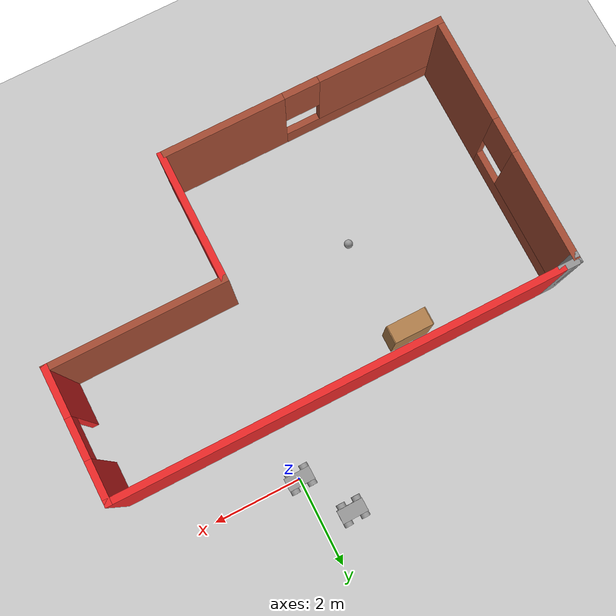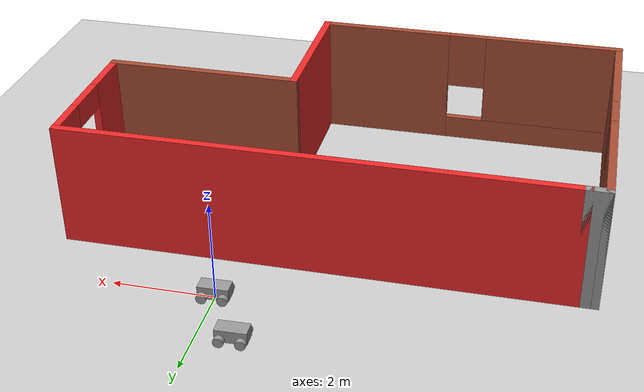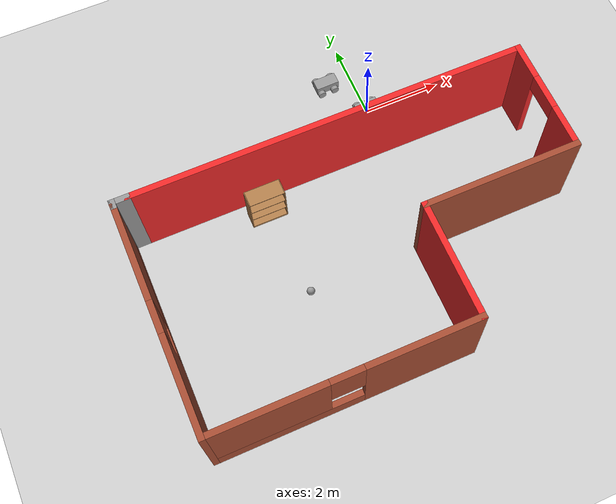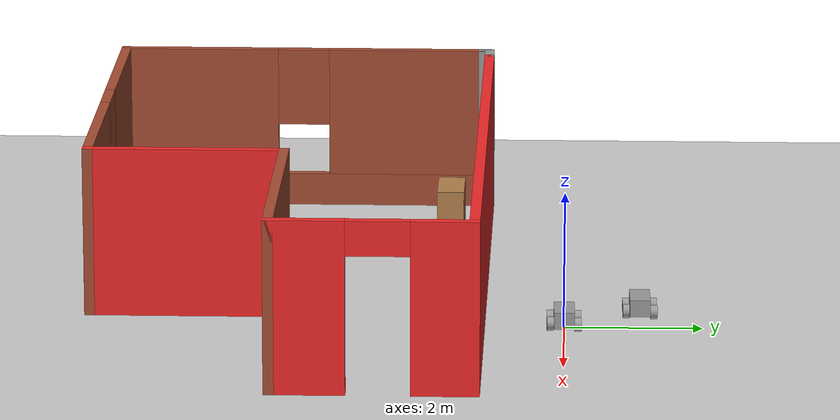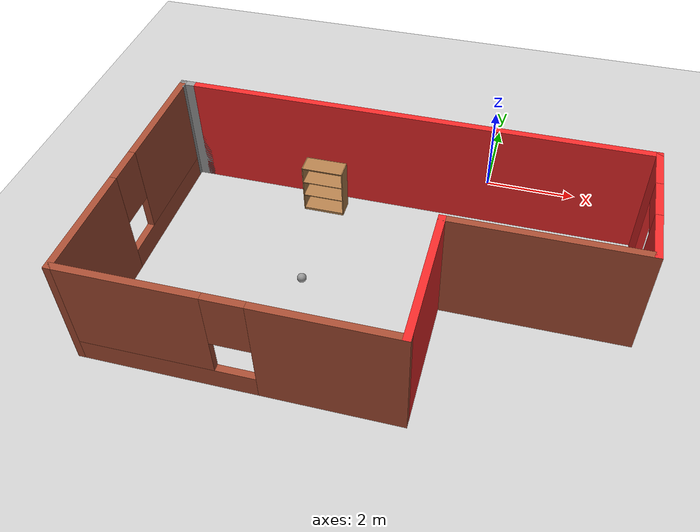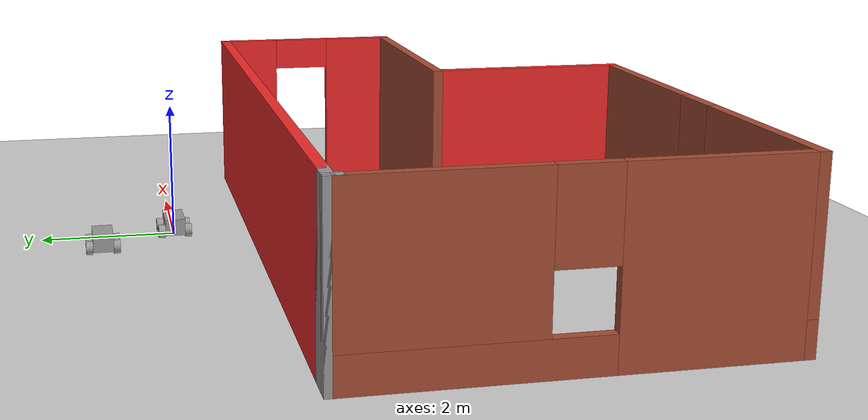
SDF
<sdf version="1.6">
 <world name="default">
  <plugin name="hello" filename="libhello.so"/>
  <light name="sun" type="directional">
   <pose>0 0 10 0 -0 0</pose>
   <diffuse>0.8 0.8 0.8 1</diffuse>
   <specular>0.2 0.2 0.2 1</specular>
   <attenuation>
    <range>1000</range>
    <constant>0.9</constant>
    <linear>0.01</linear>
    <quadratic>0.001</quadratic>
   </attenuation>
   <direction>-0.5 0.1 -0.9</direction>
  </light>
  <model name="ground_plane">
   <static>1</static>
   <link name="link">
    <collision name="collision">
     <geometry><plane><normal>0 0 1</normal><size>100 100</size></plane></geometry>
     <surface>
      <contact><collide_bitmask>65535</collide_bitmask></contact>
      <friction><ode><mu>100</mu><mu2>50</mu2></ode></friction>
     </surface>
    </collision>
    <visual name="visual">
     <cast_shadows>0</cast_shadows>
     <geometry><plane><normal>0 0 1</normal><size>100 100</size></plane></geometry>
     <material>
      <script><uri>file://media/materials/scripts/gazebo.material</uri><name>Gazebo/Grey</name></script>
     </material>
    </visual>
   </link>
  </model>
  <gravity>0 0 -9.8</gravity>
  <magnetic_field>6e-06 2.3e-05 -4.2e-05</magnetic_field>
  <atmosphere type="adiabatic"/>
  <physics name="default_physics" default="0" type="ode">
   <max_step_size>0.001</max_step_size>
   <real_time_factor>1</real_time_factor>
   <real_time_update_rate>1000</real_time_update_rate>
  </physics>
  <scene><ambient>0.4 0.4 0.4 1</ambient><background>0.7 0.7 0.7 1</background><shadows>1</shadows></scene>
  <audio><device>default</device></audio>
  <spherical_coordinates>
   <surface_model>EARTH_WGS84</surface_model>
   <latitude_deg>0</latitude_deg>
   <longitude_deg>0</longitude_deg>
   <elevation>0</elevation>
   <heading_deg>0</heading_deg>
  </spherical_coordinates>
  <model name="P1_robot">
   <link name="link_0">
    <inertial>
     <mass>1</mass>
     <inertia>
      <ixx>0.166667</ixx>
      <ixy>0</ixy>
      <ixz>0</ixz>
      <iyy>0.166667</iyy>
      <iyz>0</iyz>
      <izz>0.166667</izz>
     </inertia>
    </inertial>
    <pose>0.072104 6e-06 0.019968 0 -0 0</pose>
    <visual name="visual">
     <geometry><box><size>0.6 0.3 0.25</size></box></geometry>
     <material>
      <lighting>1</lighting>
      <script><uri>file://media/materials/scripts/gazebo.material</uri><name>Gazebo/Grey</name></script>
      <shader type="vertex"><normal_map>__default__</normal_map></shader>
      <ambient>0.3 0.3 0.3 1</ambient>
      <diffuse>0.7 0.7 0.7 1</diffuse>
      <specular>0.01 0.01 0.01 1</specular>
      <emissive>0 0 0 1</emissive>
     </material>
    </visual>
    <collision name="collision">
     <geometry><box><size>0.6 0.3 0.25</size></box></geometry>
     <surface>
      <friction>
       <ode><mu>1</mu><mu2>1</mu2><fdir1>0 0 0</fdir1><slip1>0</slip1><slip2>0</slip2></ode>
       <torsional>
        <coefficient>1</coefficient>
        <patch_radius>0</patch_radius>
        <surface_radius>0</surface_radius>
        <use_patch_radius>1</use_patch_radius>
        <ode><slip>0</slip></ode>
       </torsional>
      </friction>
      <bounce><restitution_coefficient>0</restitution_coefficient><threshold>1e+06</threshold></bounce>
      <contact>
       <collide_without_contact>0</collide_without_contact>
       <collide_without_contact_bitmask>1</collide_without_contact_bitmask>
       <collide_bitmask>1</collide_bitmask>
       <ode>
        <soft_cfm>0</soft_cfm>
        <soft_erp>0.2</soft_erp>
        <kp>1e+13</kp>
        <kd>1</kd>
        <max_vel>0.01</max_vel>
        <min_depth>0</min_depth>
       </ode>
       <bullet>
        <split_impulse>1</split_impulse>
        <split_impulse_penetration_threshold>-0.01</split_impulse_penetration_threshold>
        <soft_cfm>0</soft_cfm>
        <soft_erp>0.2</soft_erp>
        <kp>1e+13</kp>
        <kd>1</kd>
       </bullet>
      </contact>
     </surface>
    </collision>
   </link>
   <link name="link_1">
    <inertial>
     <mass>1</mass>
     <inertia><ixx>0.145833</ixx><ixy>0</ixy><ixz>0</ixz><iyy>0.145833</iyy><iyz>0</iyz><izz>0.125</izz></inertia>
    </inertial>
    <pose>0.232104 -0.200105 -0.055032 1.57 -0 0</pose>
    <visual name="visual">
     <geometry><cylinder><radius>0.1</radius><length>0.1</length></cylinder></geometry>
     <material>
      <lighting>1</lighting>
      <script><uri>file://media/materials/scripts/gazebo.material</uri><name>Gazebo/Grey</name></script>
      <shader type="vertex"><normal_map>__default__</normal_map></shader>
      <ambient>0.3 0.3 0.3 1</ambient>
      <diffuse>0.7 0.7 0.7 1</diffuse>
      <specular>0.01 0.01 0.01 1</specular>
      <emissive>0 0 0 1</emissive>
     </material>
    </visual>
    <collision name="collision">
     <geometry><cylinder><radius>0.1</radius><length>0.1</length></cylinder></geometry>
     <surface>
      <friction>
       <ode><mu>1</mu><mu2>1</mu2><fdir1>0 0 0</fdir1><slip1>0</slip1><slip2>0</slip2></ode>
       <torsional>
        <coefficient>1</coefficient>
        <patch_radius>0</patch_radius>
        <surface_radius>0</surface_radius>
        <use_patch_radius>1</use_patch_radius>
        <ode><slip>0</slip></ode>
       </torsional>
      </friction>
      <bounce><restitution_coefficient>0</restitution_coefficient><threshold>1e+06</threshold></bounce>
      <contact>
       <collide_without_contact>0</collide_without_contact>
       <collide_without_contact_bitmask>1</collide_without_contact_bitmask>
       <collide_bitmask>1</collide_bitmask>
       <ode>
        <soft_cfm>0</soft_cfm>
        <soft_erp>0.2</soft_erp>
        <kp>1e+13</kp>
        <kd>1</kd>
        <max_vel>0.01</max_vel>
        <min_depth>0</min_depth>
       </ode>
       <bullet>
        <split_impulse>1</split_impulse>
        <split_impulse_penetration_threshold>-0.01</split_impulse_penetration_threshold>
        <soft_cfm>0</soft_cfm>
        <soft_erp>0.2</soft_erp>
        <kp>1e+13</kp>
        <kd>1</kd>
       </bullet>
      </contact>
     </surface>
    </collision>
   </link>
   <link name="link_1_clone">
    <inertial>
     <mass>1</mass>
     <inertia><ixx>0.145833</ixx><ixy>0</ixy><ixz>0</ixz><iyy>0.145833</iyy><iyz>0</iyz><izz>0.125</izz></inertia>
    </inertial>
    <pose>0.272104 0.200086 -0.055032 1.57 -0 0</pose>
    <visual name="visual">
     <geometry><cylinder><radius>0.1</radius><length>0.1</length></cylinder></geometry>
     <material>
      <lighting>1</lighting>
      <script><uri>file://media/materials/scripts/gazebo.material</uri><name>Gazebo/Grey</name></script>
      <shader type="vertex"><normal_map>__default__</normal_map></shader>
      <ambient>0.3 0.3 0.3 1</ambient>
      <diffuse>0.7 0.7 0.7 1</diffuse>
      <specular>0.01 0.01 0.01 1</specular>
      <emissive>0 0 0 1</emissive>
     </material>
    </visual>
    <collision name="collision">
     <geometry><cylinder><radius>0.1</radius><length>0.1</length></cylinder></geometry>
     <surface>
      <friction>
       <ode><mu>1</mu><mu2>1</mu2><fdir1>0 0 0</fdir1><slip1>0</slip1><slip2>0</slip2></ode>
       <torsional>
        <coefficient>1</coefficient>
        <patch_radius>0</patch_radius>
        <surface_radius>0</surface_radius>
        <use_patch_radius>1</use_patch_radius>
        <ode><slip>0</slip></ode>
       </torsional>
      </friction>
      <bounce><restitution_coefficient>0</restitution_coefficient><threshold>1e+06</threshold></bounce>
      <contact>
       <collide_without_contact>0</collide_without_contact>
       <collide_without_contact_bitmask>1</collide_without_contact_bitmask>
       <collide_bitmask>1</collide_bitmask>
       <ode>
        <soft_cfm>0</soft_cfm>
        <soft_erp>0.2</soft_erp>
        <kp>1e+13</kp>
        <kd>1</kd>
        <max_vel>0.01</max_vel>
        <min_depth>0</min_depth>
       </ode>
       <bullet>
        <split_impulse>1</split_impulse>
        <split_impulse_penetration_threshold>-0.01</split_impulse_penetration_threshold>
        <soft_cfm>0</soft_cfm>
        <soft_erp>0.2</soft_erp>
        <kp>1e+13</kp>
        <kd>1</kd>
       </bullet>
      </contact>
     </surface>
    </collision>
   </link>
   <link name="link_1_clone_0">
    <inertial>
     <mass>1</mass>
     <inertia><ixx>0.145833</ixx><ixy>0</ixy><ixz>0</ixz><iyy>0.145833</iyy><iyz>0</iyz><izz>0.125</izz></inertia>
    </inertial>
    <pose>-0.127896 0.200086 -0.055032 1.57 -0 0</pose>
    <visual name="visual">
     <geometry><cylinder><radius>0.1</radius><length>0.1</length></cylinder></geometry>
     <material>
      <lighting>1</lighting>
      <script><uri>file://media/materials/scripts/gazebo.material</uri><name>Gazebo/Grey</name></script>
      <shader type="vertex"><normal_map>__default__</normal_map></shader>
      <ambient>0.3 0.3 0.3 1</ambient>
      <diffuse>0.7 0.7 0.7 1</diffuse>
      <specular>0.01 0.01 0.01 1</specular>
      <emissive>0 0 0 1</emissive>
     </material>
    </visual>
    <collision name="collision">
     <geometry><cylinder><radius>0.1</radius><length>0.1</length></cylinder></geometry>
     <surface>
      <friction>
       <ode><mu>1</mu><mu2>1</mu2><fdir1>0 0 0</fdir1><slip1>0</slip1><slip2>0</slip2></ode>
       <torsional>
        <coefficient>1</coefficient>
        <patch_radius>0</patch_radius>
        <surface_radius>0</surface_radius>
        <use_patch_radius>1</use_patch_radius>
        <ode><slip>0</slip></ode>
       </torsional>
      </friction>
      <bounce><restitution_coefficient>0</restitution_coefficient><threshold>1e+06</threshold></bounce>
      <contact>
       <collide_without_contact>0</collide_without_contact>
       <collide_without_contact_bitmask>1</collide_without_contact_bitmask>
       <collide_bitmask>1</collide_bitmask>
       <ode>
        <soft_cfm>0</soft_cfm>
        <soft_erp>0.2</soft_erp>
        <kp>1e+13</kp>
        <kd>1</kd>
        <max_vel>0.01</max_vel>
        <min_depth>0</min_depth>
       </ode>
       <bullet>
        <split_impulse>1</split_impulse>
        <split_impulse_penetration_threshold>-0.01</split_impulse_penetration_threshold>
        <soft_cfm>0</soft_cfm>
        <soft_erp>0.2</soft_erp>
        <kp>1e+13</kp>
        <kd>1</kd>
       </bullet>
      </contact>
     </surface>
    </collision>
   </link>
   <link name="link_1_clone_1">
    <inertial>
     <mass>1</mass>
     <inertia><ixx>0.145833</ixx><ixy>0</ixy><ixz>0</ixz><iyy>0.145833</iyy><iyz>0</iyz><izz>0.125</izz></inertia>
    </inertial>
    <pose>-0.127896 -0.200074 -0.055032 1.57 -0 0</pose>
    <visual name="visual">
     <geometry><cylinder><radius>0.1</radius><length>0.1</length></cylinder></geometry>
     <material>
      <lighting>1</lighting>
      <script><uri>file://media/materials/scripts/gazebo.material</uri><name>Gazebo/Grey</name></script>
      <shader type="vertex"><normal_map>__default__</normal_map></shader>
      <ambient>0.3 0.3 0.3 1</ambient>
      <diffuse>0.7 0.7 0.7 1</diffuse>
      <specular>0.01 0.01 0.01 1</specular>
      <emissive>0 0 0 1</emissive>
     </material>
    </visual>
    <collision name="collision">
     <geometry><cylinder><radius>0.1</radius><length>0.1</length></cylinder></geometry>
     <surface>
      <friction>
       <ode><mu>1</mu><mu2>1</mu2><fdir1>0 0 0</fdir1><slip1>0</slip1><slip2>0</slip2></ode>
       <torsional>
        <coefficient>1</coefficient>
        <patch_radius>0</patch_radius>
        <surface_radius>0</surface_radius>
        <use_patch_radius>1</use_patch_radius>
        <ode><slip>0</slip></ode>
       </torsional>
      </friction>
      <bounce><restitution_coefficient>0</restitution_coefficient><threshold>1e+06</threshold></bounce>
      <contact>
       <collide_without_contact>0</collide_without_contact>
       <collide_without_contact_bitmask>1</collide_without_contact_bitmask>
       <collide_bitmask>1</collide_bitmask>
       <ode>
        <soft_cfm>0</soft_cfm>
        <soft_erp>0.2</soft_erp>
        <kp>1e+13</kp>
        <kd>1</kd>
        <max_vel>0.01</max_vel>
        <min_depth>0</min_depth>
       </ode>
       <bullet>
        <split_impulse>1</split_impulse>
        <split_impulse_penetration_threshold>-0.01</split_impulse_penetration_threshold>
        <soft_cfm>0</soft_cfm>
        <soft_erp>0.2</soft_erp>
        <kp>1e+13</kp>
        <kd>1</kd>
       </bullet>
      </contact>
     </surface>
    </collision>
   </link>
   <joint name="link_0_JOINT_2" type="revolute">
    <parent>link_0</parent>
    <child>link_1_clone_1</child>
    <axis>
     <xyz>0 0 1</xyz>
     <use_parent_model_frame>0</use_parent_model_frame>
     <limit>
      <lower>-1.79769e+308</lower>
      <upper>1.79769e+308</upper>
      <effort>-1</effort>
      <velocity>-1</velocity>
     </limit>
     <dynamics>
      <spring_reference>0</spring_reference>
      <spring_stiffness>0</spring_stiffness>
      <damping>0</damping>
     </dynamics>
    </axis>
    <physics>
     <ode><limit><cfm>0</cfm><erp>0.2</erp></limit><suspension><cfm>0</cfm><erp>0.2</erp></suspension></ode>
    </physics>
   </joint>
   <joint name="link_0_JOINT_3" type="revolute">
    <parent>link_0</parent>
    <child>link_1</child>
    <axis>
     <xyz>0 0 1</xyz>
     <use_parent_model_frame>0</use_parent_model_frame>
     <limit>
      <lower>-1.79769e+308</lower>
      <upper>1.79769e+308</upper>
      <effort>-1</effort>
      <velocity>-1</velocity>
     </limit>
     <dynamics>
      <spring_reference>0</spring_reference>
      <spring_stiffness>0</spring_stiffness>
      <damping>0</damping>
     </dynamics>
    </axis>
    <physics>
     <ode><limit><cfm>0</cfm><erp>0.2</erp></limit><suspension><cfm>0</cfm><erp>0.2</erp></suspension></ode>
    </physics>
   </joint>
   <joint name="link_0_JOINT_4" type="revolute">
    <parent>link_0</parent>
    <child>link_1_clone</child>
    <axis>
     <xyz>0 0 1</xyz>
     <use_parent_model_frame>0</use_parent_model_frame>
     <limit>
      <lower>-1.79769e+308</lower>
      <upper>1.79769e+308</upper>
      <effort>-1</effort>
      <velocity>-1</velocity>
     </limit>
     <dynamics>
      <spring_reference>0</spring_reference>
      <spring_stiffness>0</spring_stiffness>
      <damping>0</damping>
      <friction>0</friction>
     </dynamics>
    </axis>
    <physics>
     <ode><limit><cfm>0</cfm><erp>0.2</erp></limit><suspension><cfm>0</cfm><erp>0.2</erp></suspension></ode>
    </physics>
   </joint>
   <joint name="link_0_JOINT_5" type="revolute">
    <parent>link_0</parent>
    <child>link_1_clone_0</child>
    <axis>
     <xyz>0 0 1</xyz>
     <use_parent_model_frame>0</use_parent_model_frame>
     <limit>
      <lower>-1.79769e+308</lower>
      <upper>1.79769e+308</upper>
      <effort>-1</effort>
      <velocity>-1</velocity>
     </limit>
     <dynamics>
      <spring_reference>0</spring_reference>
      <spring_stiffness>0</spring_stiffness>
      <damping>0</damping>
     </dynamics>
    </axis>
    <physics>
     <ode><limit><cfm>0</cfm><erp>0.2</erp></limit><suspension><cfm>0</cfm><erp>0.2</erp></suspension></ode>
    </physics>
   </joint>
   <static>0</static>
   <pose>-0.073087 -0.00179 0.155072 0 -0 0.018039</pose>
  </model>
  <model name="P1_building">
   <pose>-1.71 -4.07 0 0 -0 0</pose>
   <link name="Wall_0">
    <collision name="Wall_0_Collision">
     <geometry><box><size>10 0.15 2.5</size></box></geometry>
     <pose>0 0 1.25 0 -0 0</pose>
    </collision>
    <visual name="Wall_0_Visual">
     <pose>0 0 1.25 0 -0 0</pose>
     <geometry><box><size>10 0.15 2.5</size></box></geometry>
     <material>
      <script><uri>file://media/materials/scripts/gazebo.material</uri><name>Gazebo/Grey</name></script>
      <ambient>0.937255 0.160784 0.160784 1</ambient>
     </material>
     <meta><layer>0</layer></meta>
    </visual>
    <pose>0.175 2.85 0 0 -0 0</pose>
   </link>
   <link name="Wall_1">
    <pose>5.1 1.425 0 0 -0 -1.5708</pose>
    <visual name="Wall_1_Visual_0">
     <pose>-1.01941 0 1.25 0 -0 0</pose>
     <geometry><box><size>0.96117 0.15 2.5</size></box></geometry>
     <material>
      <script><uri>file://media/materials/scripts/gazebo.material</uri><name>Gazebo/Grey</name></script>
      <ambient>0.937255 0.160784 0.160784 1</ambient>
     </material>
     <meta><layer>0</layer></meta>
    </visual>
    <collision name="Wall_1_Collision_0">
     <geometry><box><size>0.96117 0.15 2.5</size></box></geometry>
     <pose>-1.01941 0 1.25 0 -0 0</pose>
    </collision>
    <visual name="Wall_1_Visual_1">
     <pose>0.930585 0 1.25 0 -0 0</pose>
     <geometry><box><size>1.13883 0.15 2.5</size></box></geometry>
     <material>
      <script><uri>file://media/materials/scripts/gazebo.material</uri><name>Gazebo/Grey</name></script>
      <ambient>0.937255 0.160784 0.160784 1</ambient>
     </material>
     <meta><layer>0</layer></meta>
    </visual>
    <collision name="Wall_1_Collision_1">
     <geometry><box><size>1.13883 0.15 2.5</size></box></geometry>
     <pose>0.930585 0 1.25 0 -0 0</pose>
    </collision>
    <visual name="Wall_1_Visual_2">
     <pose>-0.08883 0 2.25 0 -0 0</pose>
     <geometry><box><size>0.9 0.15 0.5</size></box></geometry>
     <material>
      <script><uri>file://media/materials/scripts/gazebo.material</uri><name>Gazebo/Grey</name></script>
      <ambient>0.937255 0.160784 0.160784 1</ambient>
     </material>
     <meta><layer>0</layer></meta>
    </visual>
    <collision name="Wall_1_Collision_2">
     <geometry><box><size>0.9 0.15 0.5</size></box></geometry>
     <pose>-0.08883 0 2.25 0 -0 0</pose>
    </collision>
   </link>
   <link name="Wall_2">
    <collision name="Wall_2_Collision">
     <geometry><box><size>4 0.15 2.5</size></box></geometry>
     <pose>0 0 1.25 0 -0 0</pose>
    </collision>
    <visual name="Wall_2_Visual">
     <pose>0 0 1.25 0 -0 0</pose>
     <geometry><box><size>4 0.15 2.5</size></box></geometry>
     <material>
      <script><uri>file://media/materials/scripts/gazebo.material</uri><name>Gazebo/Bricks</name></script>
      <ambient>1 1 1 1</ambient>
     </material>
     <meta><layer>0</layer></meta>
    </visual>
    <pose>3.175 -0 0 0 -0 3.14159</pose>
   </link>
   <link name="Wall_3">
    <collision name="Wall_3_Collision">
     <geometry><box><size>3 0.15 2.5</size></box></geometry>
     <pose>0 0 1.25 0 -0 0</pose>
    </collision>
    <visual name="Wall_3_Visual">
     <pose>0 0 1.25 0 -0 0</pose>
     <geometry><box><size>3 0.15 2.5</size></box></geometry>
     <material>
      <script><uri>file://media/materials/scripts/gazebo.material</uri><name>Gazebo/Grey</name></script>
      <ambient>0.937255 0.160784 0.160784 1</ambient>
     </material>
     <meta><layer>0</layer></meta>
    </visual>
    <pose>1.25 -1.425 0 0 -0 -1.5708</pose>
   </link>
   <link name="Wall_4">
    <pose>-1.925 -2.85 0 0 -0 3.14159</pose>
    <visual name="Wall_4_Visual_0">
     <pose>-1.84156 0 1.25 0 -0 0</pose>
     <geometry><box><size>2.81688 0.15 2.5</size></box></geometry>
     <material>
      <script><uri>file://media/materials/scripts/gazebo.material</uri><name>Gazebo/Bricks</name></script>
      <ambient>1 1 1 1</ambient>
     </material>
     <meta><layer>0</layer></meta>
    </visual>
    <collision name="Wall_4_Collision_0">
     <geometry><box><size>2.81688 0.15 2.5</size></box></geometry>
     <pose>-1.84156 0 1.25 0 -0 0</pose>
    </collision>
    <visual name="Wall_4_Visual_1">
     <pose>1.40844 0 0.25 0 -0 0</pose>
     <geometry><box><size>3.68312 0.15 0.5</size></box></geometry>
     <material>
      <script><uri>file://media/materials/scripts/gazebo.material</uri><name>Gazebo/Bricks</name></script>
      <ambient>1 1 1 1</ambient>
     </material>
     <meta><layer>0</layer></meta>
    </visual>
    <collision name="Wall_4_Collision_1">
     <geometry><box><size>3.68312 0.15 0.5</size></box></geometry>
     <pose>1.40844 0 0.25 0 -0 0</pose>
    </collision>
    <visual name="Wall_4_Visual_2">
     <pose>1.80844 0 1.5 0 -0 0</pose>
     <geometry><box><size>2.88312 0.15 2</size></box></geometry>
     <material>
      <script><uri>file://media/materials/scripts/gazebo.material</uri><name>Gazebo/Bricks</name></script>
      <ambient>1 1 1 1</ambient>
     </material>
     <meta><layer>0</layer></meta>
    </visual>
    <collision name="Wall_4_Collision_2">
     <geometry><box><size>2.88312 0.15 2</size></box></geometry>
     <pose>1.80844 0 1.5 0 -0 0</pose>
    </collision>
    <visual name="Wall_4_Visual_3">
     <pose>-0.033122 0 1.9 0 -0 0</pose>
     <geometry><box><size>0.8 0.15 1.2</size></box></geometry>
     <material>
      <script><uri>file://media/materials/scripts/gazebo.material</uri><name>Gazebo/Bricks</name></script>
      <ambient>1 1 1 1</ambient>
     </material>
     <meta><layer>0</layer></meta>
    </visual>
    <collision name="Wall_4_Collision_3">
     <geometry><box><size>0.8 0.15 1.2</size></box></geometry>
     <pose>-0.033122 0 1.9 0 -0 0</pose>
    </collision>
   </link>
   <link name="Wall_5">
    <pose>-5.1 -0.05 0 0 -0 1.5708</pose>
    <visual name="Wall_5_Visual_0">
     <pose>-1.64461 0 1.25 0 -0 0</pose>
     <geometry><box><size>2.46079 0.15 2.5</size></box></geometry>
     <material>
      <script><uri>file://media/materials/scripts/gazebo.material</uri><name>Gazebo/Bricks</name></script>
      <ambient>1 1 1 1</ambient>
     </material>
     <meta><layer>0</layer></meta>
    </visual>
    <collision name="Wall_5_Collision_0">
     <geometry><box><size>2.46079 0.15 2.5</size></box></geometry>
     <pose>-1.64461 0 1.25 0 -0 0</pose>
    </collision>
    <visual name="Wall_5_Visual_1">
     <pose>1.23039 0 0.25 0 -0 0</pose>
     <geometry><box><size>3.28921 0.15 0.5</size></box></geometry>
     <material>
      <script><uri>file://media/materials/scripts/gazebo.material</uri><name>Gazebo/Bricks</name></script>
      <ambient>1 1 1 1</ambient>
     </material>
     <meta><layer>0</layer></meta>
    </visual>
    <collision name="Wall_5_Collision_1">
     <geometry><box><size>3.28921 0.15 0.5</size></box></geometry>
     <pose>1.23039 0 0.25 0 -0 0</pose>
    </collision>
    <visual name="Wall_5_Visual_2">
     <pose>1.6304 0 1.5 0 -0 0</pose>
     <geometry><box><size>2.48921 0.15 2</size></box></geometry>
     <material>
      <script><uri>file://media/materials/scripts/gazebo.material</uri><name>Gazebo/Bricks</name></script>
      <ambient>1 1 1 1</ambient>
     </material>
     <meta><layer>0</layer></meta>
    </visual>
    <collision name="Wall_5_Collision_2">
     <geometry><box><size>2.48921 0.15 2</size></box></geometry>
     <pose>1.6304 0 1.5 0 -0 0</pose>
    </collision>
    <visual name="Wall_5_Visual_3">
     <pose>-0.014209 0 1.9 0 -0 0</pose>
     <geometry><box><size>0.8 0.15 1.2</size></box></geometry>
     <material>
      <script><uri>file://media/materials/scripts/gazebo.material</uri><name>Gazebo/Bricks</name></script>
      <ambient>1 1 1 1</ambient>
     </material>
     <meta><layer>0</layer></meta>
    </visual>
    <collision name="Wall_5_Collision_3">
     <geometry><box><size>0.8 0.15 1.2</size></box></geometry>
     <pose>-0.014209 0 1.9 0 -0 0</pose>
    </collision>
   </link>
   <link name="Wall_6">
    <collision name="Wall_6_Collision">
     <geometry><box><size>0.15 0.15 2.5</size></box></geometry>
     <pose>0 0 1.25 0 -0 0</pose>
    </collision>
    <visual name="Wall_6_Visual">
     <pose>0 0 1.25 0 -0 0</pose>
     <geometry><box><size>0.15 0.15 2.5</size></box></geometry>
     <material>
      <script><uri>file://media/materials/scripts/gazebo.material</uri><name>Gazebo/Grey</name></script>
      <ambient>1 1 1 1</ambient>
     </material>
     <meta><layer>0</layer></meta>
    </visual>
    <pose>-5.1 2.75 0 0 -0 0</pose>
   </link>
   <link name="Wall_7">
    <collision name="Wall_7_Collision">
     <geometry><box><size>0.25 0.15 2.5</size></box></geometry>
     <pose>0 0 1.25 0 -0 0</pose>
    </collision>
    <visual name="Wall_7_Visual">
     <pose>0 0 1.25 0 -0 0</pose>
     <geometry><box><size>0.25 0.15 2.5</size></box></geometry>
     <material>
      <script><uri>file://media/materials/scripts/gazebo.material</uri><name>Gazebo/Grey</name></script>
      <ambient>1 1 1 1</ambient>
     </material>
     <meta><layer>0</layer></meta>
    </visual>
    <pose>-5.1 2.8 0 0 -0 1.5708</pose>
   </link>
   <link name="Wall_8">
    <collision name="Wall_8_Collision">
     <geometry><box><size>0.5 0.15 2.5</size></box></geometry>
     <pose>0 0 1.25 0 -0 0</pose>
    </collision>
    <visual name="Wall_8_Visual">
     <pose>0 0 1.25 0 -0 0</pose>
     <geometry><box><size>0.5 0.15 2.5</size></box></geometry>
     <material>
      <script><uri>file://media/materials/scripts/gazebo.material</uri><name>Gazebo/Grey</name></script>
      <ambient>1 1 1 1</ambient>
     </material>
     <meta><layer>0</layer></meta>
    </visual>
    <pose>-4.925 2.85 0 0 -0 0</pose>
   </link>
   <static>1</static>
  </model>
  <model name="P1_robot_0">
   <link name="link_0">
    <inertial>
     <mass>1</mass>
     <inertia>
      <ixx>0.166667</ixx>
      <ixy>0</ixy>
      <ixz>0</ixz>
      <iyy>0.166667</iyy>
      <iyz>0</iyz>
      <izz>0.166667</izz>
     </inertia>
    </inertial>
    <pose>0.072104 6e-06 0.019968 0 -0 0</pose>
    <visual name="visual">
     <geometry><box><size>0.6 0.3 0.25</size></box></geometry>
     <material>
      <lighting>1</lighting>
      <script><uri>file://media/materials/scripts/gazebo.material</uri><name>Gazebo/Grey</name></script>
      <shader type="vertex"><normal_map>__default__</normal_map></shader>
      <ambient>0.3 0.3 0.3 1</ambient>
      <diffuse>0.7 0.7 0.7 1</diffuse>
      <specular>0.01 0.01 0.01 1</specular>
      <emissive>0 0 0 1</emissive>
     </material>
    </visual>
    <collision name="collision">
     <geometry><box><size>0.6 0.3 0.25</size></box></geometry>
     <surface>
      <friction>
       <ode><mu>1</mu><mu2>1</mu2><fdir1>0 0 0</fdir1><slip1>0</slip1><slip2>0</slip2></ode>
       <torsional>
        <coefficient>1</coefficient>
        <patch_radius>0</patch_radius>
        <surface_radius>0</surface_radius>
        <use_patch_radius>1</use_patch_radius>
        <ode><slip>0</slip></ode>
       </torsional>
      </friction>
      <bounce><restitution_coefficient>0</restitution_coefficient><threshold>1e+06</threshold></bounce>
      <contact>
       <collide_without_contact>0</collide_without_contact>
       <collide_without_contact_bitmask>1</collide_without_contact_bitmask>
       <collide_bitmask>1</collide_bitmask>
       <ode>
        <soft_cfm>0</soft_cfm>
        <soft_erp>0.2</soft_erp>
        <kp>1e+13</kp>
        <kd>1</kd>
        <max_vel>0.01</max_vel>
        <min_depth>0</min_depth>
       </ode>
       <bullet>
        <split_impulse>1</split_impulse>
        <split_impulse_penetration_threshold>-0.01</split_impulse_penetration_threshold>
        <soft_cfm>0</soft_cfm>
        <soft_erp>0.2</soft_erp>
        <kp>1e+13</kp>
        <kd>1</kd>
       </bullet>
      </contact>
     </surface>
    </collision>
   </link>
   <link name="link_1">
    <inertial>
     <mass>1</mass>
     <inertia><ixx>0.145833</ixx><ixy>0</ixy><ixz>0</ixz><iyy>0.145833</iyy><iyz>0</iyz><izz>0.125</izz></inertia>
    </inertial>
    <pose>0.232104 -0.200105 -0.055032 1.57 -0 0</pose>
    <visual name="visual">
     <geometry><cylinder><radius>0.1</radius><length>0.1</length></cylinder></geometry>
     <material>
      <lighting>1</lighting>
      <script><uri>file://media/materials/scripts/gazebo.material</uri><name>Gazebo/Grey</name></script>
      <shader type="vertex"><normal_map>__default__</normal_map></shader>
      <ambient>0.3 0.3 0.3 1</ambient>
      <diffuse>0.7 0.7 0.7 1</diffuse>
      <specular>0.01 0.01 0.01 1</specular>
      <emissive>0 0 0 1</emissive>
     </material>
    </visual>
    <collision name="collision">
     <geometry><cylinder><radius>0.1</radius><length>0.1</length></cylinder></geometry>
     <surface>
      <friction>
       <ode><mu>1</mu><mu2>1</mu2><fdir1>0 0 0</fdir1><slip1>0</slip1><slip2>0</slip2></ode>
       <torsional>
        <coefficient>1</coefficient>
        <patch_radius>0</patch_radius>
        <surface_radius>0</surface_radius>
        <use_patch_radius>1</use_patch_radius>
        <ode><slip>0</slip></ode>
       </torsional>
      </friction>
      <bounce><restitution_coefficient>0</restitution_coefficient><threshold>1e+06</threshold></bounce>
      <contact>
       <collide_without_contact>0</collide_without_contact>
       <collide_without_contact_bitmask>1</collide_without_contact_bitmask>
       <collide_bitmask>1</collide_bitmask>
       <ode>
        <soft_cfm>0</soft_cfm>
        <soft_erp>0.2</soft_erp>
        <kp>1e+13</kp>
        <kd>1</kd>
        <max_vel>0.01</max_vel>
        <min_depth>0</min_depth>
       </ode>
       <bullet>
        <split_impulse>1</split_impulse>
        <split_impulse_penetration_threshold>-0.01</split_impulse_penetration_threshold>
        <soft_cfm>0</soft_cfm>
        <soft_erp>0.2</soft_erp>
        <kp>1e+13</kp>
        <kd>1</kd>
       </bullet>
      </contact>
     </surface>
    </collision>
   </link>
   <link name="link_1_clone">
    <inertial>
     <mass>1</mass>
     <inertia><ixx>0.145833</ixx><ixy>0</ixy><ixz>0</ixz><iyy>0.145833</iyy><iyz>0</iyz><izz>0.125</izz></inertia>
    </inertial>
    <pose>0.272104 0.200086 -0.055032 1.57 -0 0</pose>
    <visual name="visual">
     <geometry><cylinder><radius>0.1</radius><length>0.1</length></cylinder></geometry>
     <material>
      <lighting>1</lighting>
      <script><uri>file://media/materials/scripts/gazebo.material</uri><name>Gazebo/Grey</name></script>
      <shader type="vertex"><normal_map>__default__</normal_map></shader>
      <ambient>0.3 0.3 0.3 1</ambient>
      <diffuse>0.7 0.7 0.7 1</diffuse>
      <specular>0.01 0.01 0.01 1</specular>
      <emissive>0 0 0 1</emissive>
     </material>
    </visual>
    <collision name="collision">
     <geometry><cylinder><radius>0.1</radius><length>0.1</length></cylinder></geometry>
     <surface>
      <friction>
       <ode><mu>1</mu><mu2>1</mu2><fdir1>0 0 0</fdir1><slip1>0</slip1><slip2>0</slip2></ode>
       <torsional>
        <coefficient>1</coefficient>
        <patch_radius>0</patch_radius>
        <surface_radius>0</surface_radius>
        <use_patch_radius>1</use_patch_radius>
        <ode><slip>0</slip></ode>
       </torsional>
      </friction>
      <bounce><restitution_coefficient>0</restitution_coefficient><threshold>1e+06</threshold></bounce>
      <contact>
       <collide_without_contact>0</collide_without_contact>
       <collide_without_contact_bitmask>1</collide_without_contact_bitmask>
       <collide_bitmask>1</collide_bitmask>
       <ode>
        <soft_cfm>0</soft_cfm>
        <soft_erp>0.2</soft_erp>
        <kp>1e+13</kp>
        <kd>1</kd>
        <max_vel>0.01</max_vel>
        <min_depth>0</min_depth>
       </ode>
       <bullet>
        <split_impulse>1</split_impulse>
        <split_impulse_penetration_threshold>-0.01</split_impulse_penetration_threshold>
        <soft_cfm>0</soft_cfm>
        <soft_erp>0.2</soft_erp>
        <kp>1e+13</kp>
        <kd>1</kd>
       </bullet>
      </contact>
     </surface>
    </collision>
   </link>
   <link name="link_1_clone_0">
    <inertial>
     <mass>1</mass>
     <inertia><ixx>0.145833</ixx><ixy>0</ixy><ixz>0</ixz><iyy>0.145833</iyy><iyz>0</iyz><izz>0.125</izz></inertia>
    </inertial>
    <pose>-0.127896 0.200086 -0.055032 1.57 -0 0</pose>
    <visual name="visual">
     <geometry><cylinder><radius>0.1</radius><length>0.1</length></cylinder></geometry>
     <material>
      <lighting>1</lighting>
      <script><uri>file://media/materials/scripts/gazebo.material</uri><name>Gazebo/Grey</name></script>
      <shader type="vertex"><normal_map>__default__</normal_map></shader>
      <ambient>0.3 0.3 0.3 1</ambient>
      <diffuse>0.7 0.7 0.7 1</diffuse>
      <specular>0.01 0.01 0.01 1</specular>
      <emissive>0 0 0 1</emissive>
     </material>
    </visual>
    <collision name="collision">
     <geometry><cylinder><radius>0.1</radius><length>0.1</length></cylinder></geometry>
     <surface>
      <friction>
       <ode><mu>1</mu><mu2>1</mu2><fdir1>0 0 0</fdir1><slip1>0</slip1><slip2>0</slip2></ode>
       <torsional>
        <coefficient>1</coefficient>
        <patch_radius>0</patch_radius>
        <surface_radius>0</surface_radius>
        <use_patch_radius>1</use_patch_radius>
        <ode><slip>0</slip></ode>
       </torsional>
      </friction>
      <bounce><restitution_coefficient>0</restitution_coefficient><threshold>1e+06</threshold></bounce>
      <contact>
       <collide_without_contact>0</collide_without_contact>
       <collide_without_contact_bitmask>1</collide_without_contact_bitmask>
       <collide_bitmask>1</collide_bitmask>
       <ode>
        <soft_cfm>0</soft_cfm>
        <soft_erp>0.2</soft_erp>
        <kp>1e+13</kp>
        <kd>1</kd>
        <max_vel>0.01</max_vel>
        <min_depth>0</min_depth>
       </ode>
       <bullet>
        <split_impulse>1</split_impulse>
        <split_impulse_penetration_threshold>-0.01</split_impulse_penetration_threshold>
        <soft_cfm>0</soft_cfm>
        <soft_erp>0.2</soft_erp>
        <kp>1e+13</kp>
        <kd>1</kd>
       </bullet>
      </contact>
     </surface>
    </collision>
   </link>
   <link name="link_1_clone_1">
    <inertial>
     <mass>1</mass>
     <inertia><ixx>0.145833</ixx><ixy>0</ixy><ixz>0</ixz><iyy>0.145833</iyy><iyz>0</iyz><izz>0.125</izz></inertia>
    </inertial>
    <pose>-0.127896 -0.200074 -0.055032 1.57 -0 0</pose>
    <visual name="visual">
     <geometry><cylinder><radius>0.1</radius><length>0.1</length></cylinder></geometry>
     <material>
      <lighting>1</lighting>
      <script><uri>file://media/materials/scripts/gazebo.material</uri><name>Gazebo/Grey</name></script>
      <shader type="vertex"><normal_map>__default__</normal_map></shader>
      <ambient>0.3 0.3 0.3 1</ambient>
      <diffuse>0.7 0.7 0.7 1</diffuse>
      <specular>0.01 0.01 0.01 1</specular>
      <emissive>0 0 0 1</emissive>
     </material>
    </visual>
    <collision name="collision">
     <geometry><cylinder><radius>0.1</radius><length>0.1</length></cylinder></geometry>
     <surface>
      <friction>
       <ode><mu>1</mu><mu2>1</mu2><fdir1>0 0 0</fdir1><slip1>0</slip1><slip2>0</slip2></ode>
       <torsional>
        <coefficient>1</coefficient>
        <patch_radius>0</patch_radius>
        <surface_radius>0</surface_radius>
        <use_patch_radius>1</use_patch_radius>
        <ode><slip>0</slip></ode>
       </torsional>
      </friction>
      <bounce><restitution_coefficient>0</restitution_coefficient><threshold>1e+06</threshold></bounce>
      <contact>
       <collide_without_contact>0</collide_without_contact>
       <collide_without_contact_bitmask>1</collide_without_contact_bitmask>
       <collide_bitmask>1</collide_bitmask>
       <ode>
        <soft_cfm>0</soft_cfm>
        <soft_erp>0.2</soft_erp>
        <kp>1e+13</kp>
        <kd>1</kd>
        <max_vel>0.01</max_vel>
        <min_depth>0</min_depth>
       </ode>
       <bullet>
        <split_impulse>1</split_impulse>
        <split_impulse_penetration_threshold>-0.01</split_impulse_penetration_threshold>
        <soft_cfm>0</soft_cfm>
        <soft_erp>0.2</soft_erp>
        <kp>1e+13</kp>
        <kd>1</kd>
       </bullet>
      </contact>
     </surface>
    </collision>
   </link>
   <joint name="link_0_JOINT_2" type="revolute">
    <parent>link_0</parent>
    <child>link_1_clone_1</child>
    <axis>
     <xyz>0 0 1</xyz>
     <use_parent_model_frame>0</use_parent_model_frame>
     <limit>
      <lower>-1.79769e+308</lower>
      <upper>1.79769e+308</upper>
      <effort>-1</effort>
      <velocity>-1</velocity>
     </limit>
     <dynamics>
      <spring_reference>0</spring_reference>
      <spring_stiffness>0</spring_stiffness>
      <damping>0</damping>
     </dynamics>
    </axis>
    <physics>
     <ode><limit><cfm>0</cfm><erp>0.2</erp></limit><suspension><cfm>0</cfm><erp>0.2</erp></suspension></ode>
    </physics>
   </joint>
   <joint name="link_0_JOINT_3" type="revolute">
    <parent>link_0</parent>
    <child>link_1</child>
    <axis>
     <xyz>0 0 1</xyz>
     <use_parent_model_frame>0</use_parent_model_frame>
     <limit>
      <lower>-1.79769e+308</lower>
      <upper>1.79769e+308</upper>
      <effort>-1</effort>
      <velocity>-1</velocity>
     </limit>
     <dynamics>
      <spring_reference>0</spring_reference>
      <spring_stiffness>0</spring_stiffness>
      <damping>0</damping>
     </dynamics>
    </axis>
    <physics>
     <ode><limit><cfm>0</cfm><erp>0.2</erp></limit><suspension><cfm>0</cfm><erp>0.2</erp></suspension></ode>
    </physics>
   </joint>
   <joint name="link_0_JOINT_4" type="revolute">
    <parent>link_0</parent>
    <child>link_1_clone</child>
    <axis>
     <xyz>0 0 1</xyz>
     <use_parent_model_frame>0</use_parent_model_frame>
     <limit>
      <lower>-1.79769e+308</lower>
      <upper>1.79769e+308</upper>
      <effort>-1</effort>
      <velocity>-1</velocity>
     </limit>
     <dynamics>
      <spring_reference>0</spring_reference>
      <spring_stiffness>0</spring_stiffness>
      <damping>0</damping>
      <friction>0</friction>
     </dynamics>
    </axis>
    <physics>
     <ode><limit><cfm>0</cfm><erp>0.2</erp></limit><suspension><cfm>0</cfm><erp>0.2</erp></suspension></ode>
    </physics>
   </joint>
   <joint name="link_0_JOINT_5" type="revolute">
    <parent>link_0</parent>
    <child>link_1_clone_0</child>
    <axis>
     <xyz>0 0 1</xyz>
     <use_parent_model_frame>0</use_parent_model_frame>
     <limit>
      <lower>-1.79769e+308</lower>
      <upper>1.79769e+308</upper>
      <effort>-1</effort>
      <velocity>-1</velocity>
     </limit>
     <dynamics>
      <spring_reference>0</spring_reference>
      <spring_stiffness>0</spring_stiffness>
      <damping>0</damping>
     </dynamics>
    </axis>
    <physics>
     <ode><limit><cfm>0</cfm><erp>0.2</erp></limit><suspension><cfm>0</cfm><erp>0.2</erp></suspension></ode>
    </physics>
   </joint>
   <static>0</static>
   <pose>-0.761586 1.09633 0.155067 -2e-06 -1.8e-05 0.018065</pose>
  </model>
  <light name="user_directional_light_0" type="directional">
   <pose>1.55953 0.634746 1 0 -0 0</pose>
   <diffuse>0.5 0.5 0.5 1</diffuse>
   <specular>0.1 0.1 0.1 1</specular>
   <direction>0.1 0.1 -0.9</direction>
   <attenuation>
    <range>20</range>
    <constant>0.5</constant>
    <linear>0.01</linear>
    <quadratic>0.001</quadratic>
   </attenuation>
  </light>
  <light name="user_directional_light_1" type="directional">
   <pose>-2.81451 2.5737 1 0 -0 0</pose>
   <diffuse>0.5 0.5 0.5 1</diffuse>
   <specular>0.1 0.1 0.1 1</specular>
   <direction>0.1 0.1 -0.9</direction>
   <attenuation>
    <range>20</range>
    <constant>0.5</constant>
    <linear>0.01</linear>
    <quadratic>0.001</quadratic>
   </attenuation>
  </light>
  <light name="user_directional_light_2" type="directional">
   <pose>-7.57732 1.15494 1 0 -0 0</pose>
   <diffuse>0.5 0.5 0.5 1</diffuse>
   <specular>0.1 0.1 0.1 1</specular>
   <direction>0.1 0.1 -0.9</direction>
   <attenuation>
    <range>20</range>
    <constant>0.5</constant>
    <linear>0.01</linear>
    <quadratic>0.001</quadratic>
   </attenuation>
  </light>
  <model name="my_ball">
   <link name="link_0">
    <inertial>
     <mass>1</mass>
     <inertia><ixx>0.1</ixx><ixy>0</ixy><ixz>0</ixz><iyy>0.1</iyy><iyz>0</iyz><izz>0.1</izz></inertia>
    </inertial>
    <pose>-0.110335 -0.025075 0.1 0 -0 0</pose>
    <visual name="visual">
     <geometry><sphere><radius>0.1</radius></sphere></geometry>
     <material>
      <lighting>1</lighting>
      <script><uri>file://media/materials/scripts/gazebo.material</uri><name>Gazebo/Grey</name></script>
      <shader type="vertex"><normal_map>__default__</normal_map></shader>
      <ambient>1 1 1 1</ambient>
      <diffuse>1 1 1 1</diffuse>
      <specular>1 1 1 1</specular>
      <emissive>1 1 1 1</emissive>
     </material>
    </visual>
    <collision name="collision">
     <geometry><sphere><radius>0.1</radius></sphere></geometry>
     <surface>
      <friction>
       <ode><mu>1</mu><mu2>1</mu2><fdir1>0 0 0</fdir1><slip1>0</slip1><slip2>0</slip2></ode>
       <torsional>
        <coefficient>1</coefficient>
        <patch_radius>0</patch_radius>
        <surface_radius>0</surface_radius>
        <use_patch_radius>1</use_patch_radius>
        <ode><slip>0</slip></ode>
       </torsional>
      </friction>
      <bounce><restitution_coefficient>0</restitution_coefficient><threshold>1e+06</threshold></bounce>
      <contact>
       <collide_without_contact>0</collide_without_contact>
       <collide_without_contact_bitmask>1</collide_without_contact_bitmask>
       <collide_bitmask>1</collide_bitmask>
       <ode>
        <soft_cfm>0</soft_cfm>
        <soft_erp>0.2</soft_erp>
        <kp>1e+13</kp>
        <kd>1</kd>
        <max_vel>0.01</max_vel>
        <min_depth>0</min_depth>
       </ode>
       <bullet>
        <split_impulse>1</split_impulse>
        <split_impulse_penetration_threshold>-0.01</split_impulse_penetration_threshold>
        <soft_cfm>0</soft_cfm>
        <soft_erp>0.2</soft_erp>
        <kp>1e+13</kp>
        <kd>1</kd>
       </bullet>
      </contact>
     </surface>
    </collision>
   </link>
   <static>0</static>
   <pose>-3.19348 -4.05009 -0 0 -0 0</pose>
  </model>
  <model name="bookshelf">
   <static>1</static>
   <link name="link">
    <inertial><mass>1</mass></inertial>
    <collision name="back">
     <pose>0 0.005 0.6 0 -0 0</pose>
     <geometry><box><size>0.9 0.01 1.2</size></box></geometry>
    </collision>
    <visual name="visual1">
     <pose>0 0.005 0.6 0 -0 0</pose>
     <geometry><box><size>0.9 0.01 1.2</size></box></geometry>
     <material>
      <script><uri>file://media/materials/scripts/gazebo.material</uri><name>Gazebo/Wood</name></script>
     </material>
    </visual>
    <collision name="left_side">
     <pose>0.45 -0.195 0.6 0 -0 0</pose>
     <geometry><box><size>0.02 0.4 1.2</size></box></geometry>
    </collision>
    <visual name="visual2">
     <pose>0.45 -0.195 0.6 0 -0 0</pose>
     <geometry><box><size>0.02 0.4 1.2</size></box></geometry>
     <material>
      <script><uri>file://media/materials/scripts/gazebo.material</uri><name>Gazebo/Wood</name></script>
     </material>
    </visual>
    <collision name="right_side">
     <pose>-0.45 -0.195 0.6 0 -0 0</pose>
     <geometry><box><size>0.02 0.4 1.2</size></box></geometry>
    </collision>
    <visual name="visual3">
     <pose>-0.45 -0.195 0.6 0 -0 0</pose>
     <geometry><box><size>0.02 0.4 1.2</size></box></geometry>
     <material>
      <script><uri>file://media/materials/scripts/gazebo.material</uri><name>Gazebo/Wood</name></script>
     </material>
    </visual>
    <collision name="bottom">
     <pose>0 -0.195 0.03 0 -0 0</pose>
     <geometry><box><size>0.88 0.4 0.06</size></box></geometry>
    </collision>
    <visual name="visual4">
     <pose>0 -0.195 0.03 0 -0 0</pose>
     <geometry><box><size>0.88 0.4 0.06</size></box></geometry>
     <material>
      <script><uri>file://media/materials/scripts/gazebo.material</uri><name>Gazebo/Wood</name></script>
     </material>
    </visual>
    <collision name="top">
     <pose>0 -0.195 1.19 0 -0 0</pose>
     <geometry><box><size>0.88 0.4 0.02</size></box></geometry>
    </collision>
    <visual name="visual5">
     <pose>0 -0.195 1.19 0 -0 0</pose>
     <geometry><box><size>0.88 0.4 0.02</size></box></geometry>
     <material>
      <script><uri>file://media/materials/scripts/gazebo.material</uri><name>Gazebo/Wood</name></script>
     </material>
    </visual>
    <collision name="low_shelf">
     <pose>0 -0.195 0.43 0 -0 0</pose>
     <geometry><box><size>0.88 0.4 0.02</size></box></geometry>
    </collision>
    <visual name="visual6">
     <pose>0 -0.195 0.43 0 -0 0</pose>
     <geometry><box><size>0.88 0.4 0.02</size></box></geometry>
     <material>
      <script><uri>file://media/materials/scripts/gazebo.material</uri><name>Gazebo/Wood</name></script>
     </material>
    </visual>
    <collision name="high_shelf">
     <pose>0 -0.195 0.8 0 -0 0</pose>
     <geometry><box><size>0.88 0.4 0.02</size></box></geometry>
    </collision>
    <visual name="visual7">
     <pose>0 -0.195 0.8 0 -0 0</pose>
     <geometry><box><size>0.88 0.4 0.02</size></box></geometry>
     <material>
      <script><uri>file://media/materials/scripts/gazebo.material</uri><name>Gazebo/Wood</name></script>
     </material>
    </visual>
   </link>
   <pose>-3.47609 -1.53366 0 0 -0 0</pose>
  </model>
 </world>
</sdf>
